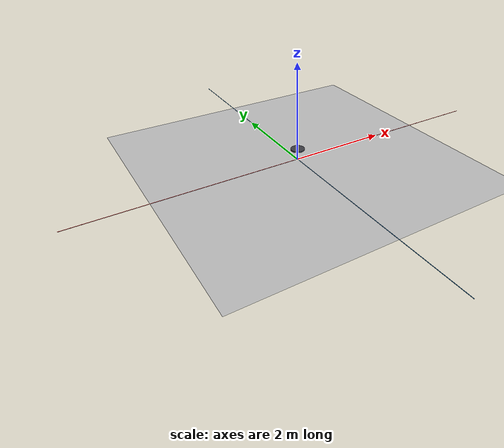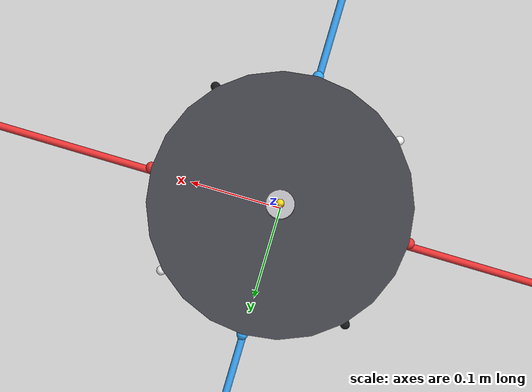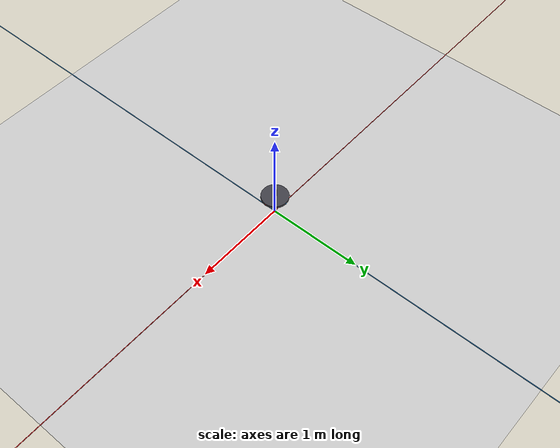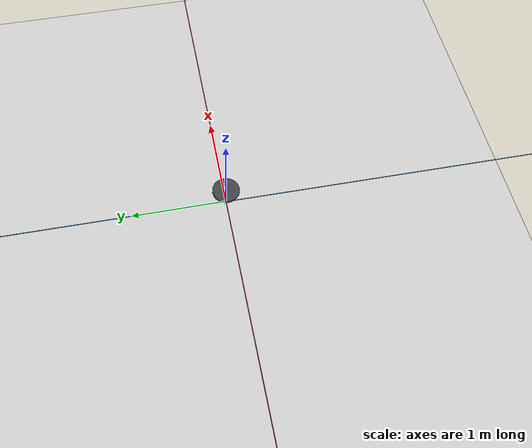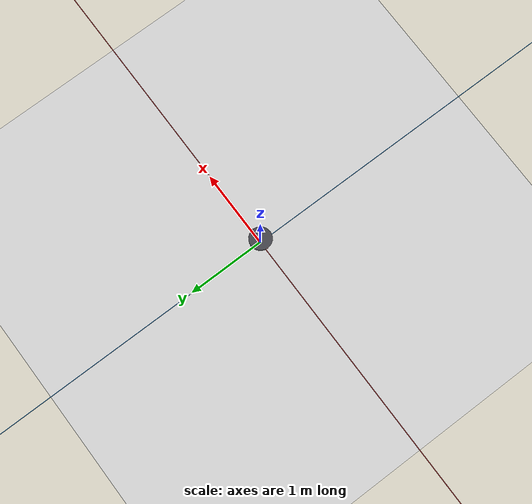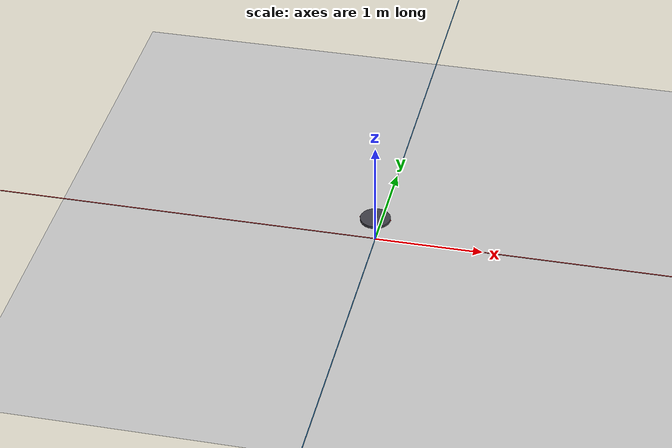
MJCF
<mujoco model="gyroscopic_rotor">
  <compiler angle="degree"/>
  <option gravity="0 0 -9.81" timestep="0.001" integrator="RK4"/>

  <asset>
    <texture
      name="grid_tex"
      type="2d"
      builtin="checker"
      rgb1="0.86 0.86 0.86"
      rgb2="0.72 0.72 0.72"
      width="512"
      height="512"
      mark="cross"
      markrgb="0.95 0.95 0.95"
    />
    <material name="grid_mat" texture="grid_tex" texrepeat="8 8" texuniform="true"/>
    <material name="metal" rgba="0.72 0.72 0.74 1"/>
  </asset>

  <worldbody>
    <light pos="1.5 -1.5 2.0" dir="-1 1 -1" diffuse="0.9 0.9 0.9"/>

    <geom
      name="floor"
      type="plane"
      size="3 3 0.1"
      material="grid_mat"
      friction="1.2 0.02 0.002"
    />
    <geom name="x_ref" type="capsule" fromto="-4.5 0 0.001 4.5 0 0.001" size="0.004" rgba="0.9 0.2 0.2 1"/>
    <geom name="y_ref" type="capsule" fromto="0 -4.5 0.001 0 4.5 0.001" size="0.004" rgba="0.2 0.6 0.9 1"/>

    <camera name="cam_oblique" pos="4.5 -3.6 2.55" xyaxes="0.62 0.78 0.00 -0.32 0.25 0.91"/>
    <camera name="cam_top" pos="0 0 7.8" xyaxes="1 0 0 0 1 0"/>

    <body name="rotor" pos="0 0 0">
      <freejoint name="free"/>

      <geom
        name="pivot_tip"
        type="sphere"
        pos="0 0 0"
        size="0.014"
        mass="0.02"
        friction="1.2 0.02 0.002"
        rgba="0.1 0.1 0.1 1"
      />
      <geom name="shaft" type="cylinder" pos="0 0 0.16" size="0.015 0.16" mass="0.14" material="metal"/>
      <geom name="rotor_disk" type="cylinder" pos="0 0 0.23" size="0.14 0.012" mass="0.28" rgba="0.25 0.25 0.28 1"/>
      <geom name="axis_marker" type="capsule" fromto="0 0 0 0 0 0.42" size="0.004" mass="0.005" rgba="1.0 0.85 0.1 1"/>

      <geom name="stripe_x" type="capsule" fromto="-0.14 0 0.23 0.14 0 0.23" size="0.006" mass="0.01" rgba="0.95 0.2 0.2 1"/>
      <geom name="stripe_y" type="capsule" fromto="0 -0.14 0.23 0 0.14 0.23" size="0.006" mass="0.01" rgba="0.2 0.65 0.95 1"/>
      <geom name="stripe_d1" type="capsule" fromto="-0.10 -0.10 0.23 0.10 0.10 0.23" size="0.005" mass="0.008" rgba="0.95 0.95 0.95 1"/>
      <geom name="stripe_d2" type="capsule" fromto="-0.10 0.10 0.23 0.10 -0.10 0.23" size="0.005" mass="0.008" rgba="0.1 0.1 0.1 1"/>
    </body>
  </worldbody>
</mujoco>
